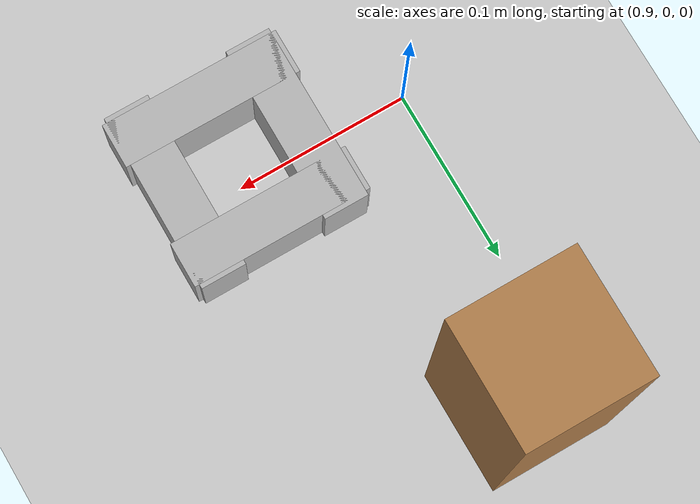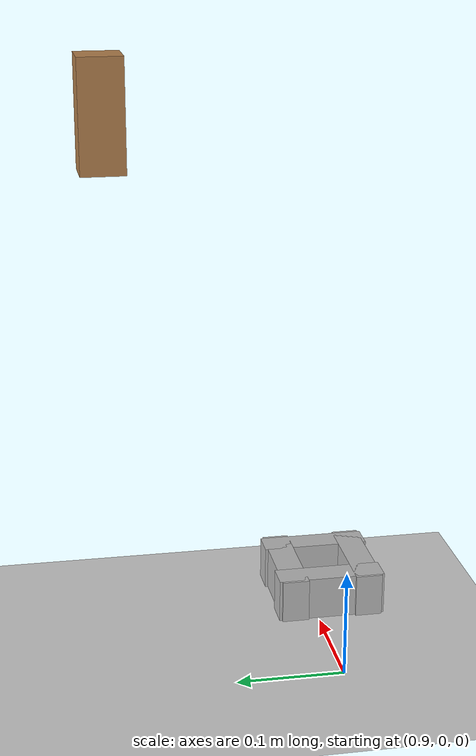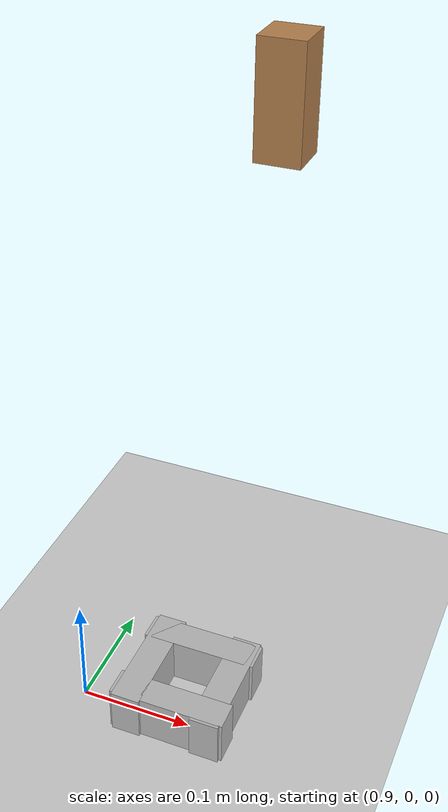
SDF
<sdf version="1.5">
 <world name="default">
  <plugin name="gazebo_ros_state" filename="libgazebo_ros_state.so">
   <ros>
    <namespace>/gazebo_state</namespace>
    <argument>--ros-args --remap model_states:=model_states_demo</argument>
    <argument>--ros-args --remap link_states:=link_states_demo</argument>
   </ros>
   <update_rate>50.0</update_rate>
  </plugin>
  <plugin name="ros_link_attacher_plugin" filename="libgazebo_ros_link_attacher_plugin.so"/>
  <light name="sun" type="directional">
   <pose>0 0 10 0 -0 0</pose>
   <diffuse>0.8 0.8 0.8 1</diffuse>
   <specular>0.2 0.2 0.2 1</specular>
   <attenuation>
    <range>1000</range>
    <constant>0.9</constant>
    <linear>0.01</linear>
    <quadratic>0.001</quadratic>
   </attenuation>
   <direction>-0.5 0.1 -0.9</direction>
   <spot><inner_angle>0</inner_angle><outer_angle>0</outer_angle><falloff>0</falloff></spot>
  </light>
  <model name="peg">
   <pose>1.0 0.2 .5 0 0 0</pose>
   <link name="link">
    <collision name="collision"><geometry><box><size>0.04 0.04 0.1</size></box></geometry></collision>
    <visual name="visual">
     <geometry><box><size>0.04 0.04 0.1</size></box></geometry>
     <material>
      <script><uri>file://media/materials/scripts/gazebo.material</uri><name>Gazebo/Wood</name></script>
     </material>
    </visual>
   </link>
  </model>
  <model name="box_with_hole">
   <pose>1 0 0.05 0 0 0</pose>
   <link name="link">
    <collision name="left_side">
     <geometry><box><size>0.025 0.1 0.04</size></box></geometry>
     <pose>-0.035 0 0 0 0 0</pose>
    </collision>
    <visual name="left_side_visual">
     <geometry><box><size>0.025 0.1 0.04</size></box></geometry>
     <pose>-0.035 0 0 0 0 0</pose>
    </visual>
    <collision name="right_side">
     <geometry><box><size>0.025 0.1 0.04</size></box></geometry>
     <pose>0.035 0 0 0 0 0</pose>
    </collision>
    <visual name="right_side_visual">
     <geometry><box><size>0.025 0.1 0.04</size></box></geometry>
     <pose>0.035 0 0 0 0 0</pose>
    </visual>
    <collision name="front">
     <geometry><box><size>0.1 0.025 0.04</size></box></geometry>
     <pose>0 0.035 0 0 0 0</pose>
    </collision>
    <visual name="front_visual">
     <geometry><box><size>0.1 0.025 0.04</size></box></geometry>
     <pose>0 0.035 0 0 0 0</pose>
    </visual>
    <collision name="back">
     <geometry><box><size>0.1 0.025 0.04</size></box></geometry>
     <pose>0 -0.035 0 0 0 0</pose>
    </collision>
    <visual name="back_visual">
     <geometry><box><size>0.1 0.025 0.04</size></box></geometry>
     <pose>0 -0.035 0 0 0 0</pose>
    </visual>
   </link>
  </model>
  <model name="ground_plane">
   <static>1</static>
   <link name="link">
    <collision name="collision">
     <geometry><plane><normal>0 0 1</normal><size>100 100</size></plane></geometry>
     <surface><friction><ode><mu>100</mu><mu2>50</mu2></ode></friction></surface>
    </collision>
    <visual name="visual">
     <cast_shadows>0</cast_shadows>
     <geometry><plane><normal>0 0 1</normal><size>100 100</size></plane></geometry>
     <material>
      <script><uri>file://media/materials/scripts/gazebo.material</uri><name>Gazebo/Grey</name></script>
     </material>
    </visual>
   </link>
  </model>
  <gravity>0 0 -9.8</gravity>
  <magnetic_field>6e-06 2.3e-05 -4.2e-05</magnetic_field>
  <atmosphere type="adiabatic"/>
  <physics type="ode">
   <gravity>0.000000 0.000000 -9.810000</gravity>
   <ode>
    <solver><type>quick</type><iters>20</iters><sor>0.2500000</sor></solver>
    <constraints>
     <cfm>0.000000</cfm>
     <erp>0.200000</erp>
     <contact_max_correcting_vel>100.000000</contact_max_correcting_vel>
     <contact_surface_layer>0.000000</contact_surface_layer>
    </constraints>
   </ode>
   <real_time_update_rate>1000.000000</real_time_update_rate>
   <max_step_size>0.001000</max_step_size>
   <real_time_factor>1.000000</real_time_factor>
   <max_contacts>20</max_contacts>
  </physics>
  <scene><ambient>0.5 0.5 0.5 1</ambient><background>0.7 0.7 0.7 1</background><shadows>0</shadows></scene>
  <audio><device>default</device></audio>
  <spherical_coordinates>
   <surface_model>EARTH_WGS84</surface_model>
   <latitude_deg>0</latitude_deg>
   <longitude_deg>0</longitude_deg>
   <elevation>0</elevation>
   <heading_deg>0</heading_deg>
  </spherical_coordinates>
 </world>
</sdf>
